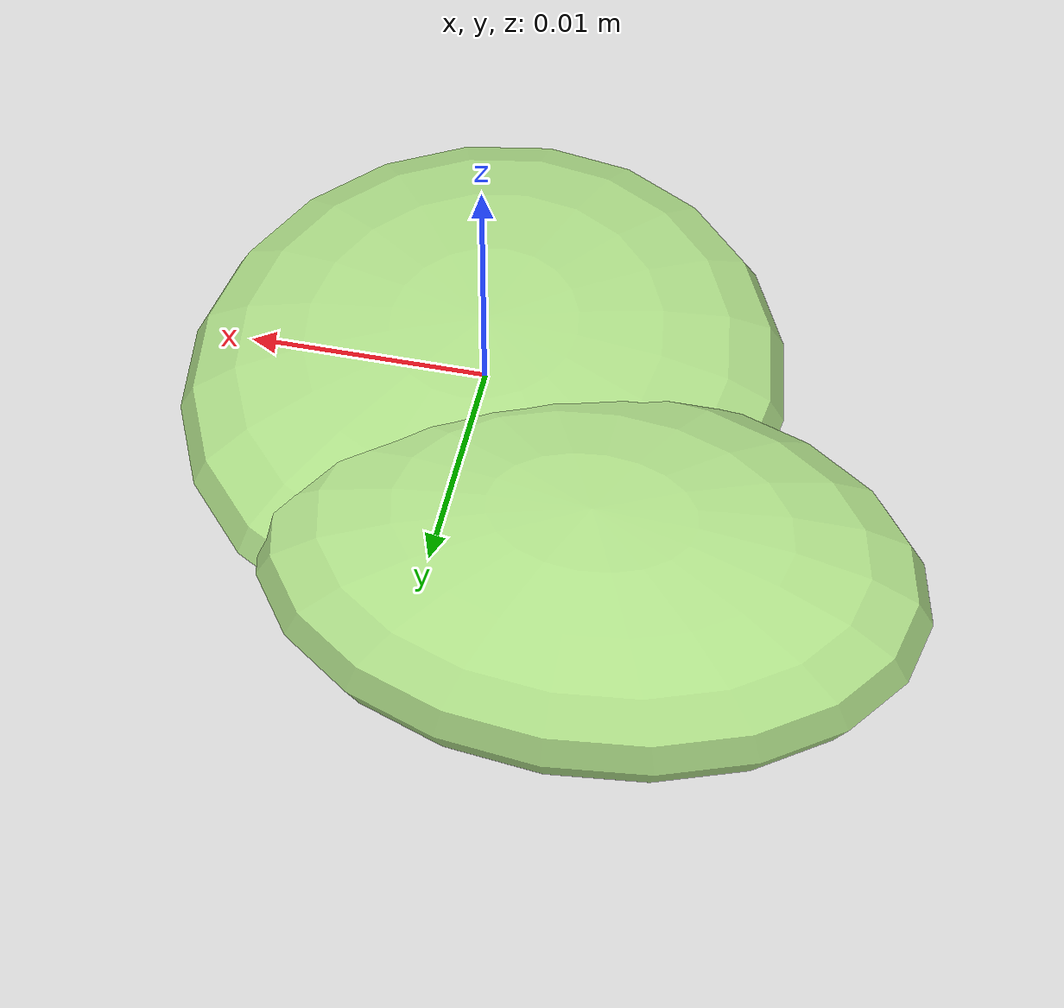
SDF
<?xml version="1.0" ?>
<!-- |    This document was autogenerated by xmacro from data/veggie_template/veggie_base.sdf.xacro  | -->
<!-- |    EDITING THIS FILE BY HAND IS NOT RECOMMENDED                                               | -->
<sdf version="1.8">
	<!-- Parameters -->
	<!-- Base -->
	<!-- Joint 0 -->
	<!-- Link 1 -->
	<!-- Joint 1 -->
	<!-- Link 2 -->
	<!-- Primitives -->
	<!-- All dimensions are half -->
	<!-- Object -->
	<model name="veggie">
		<!-- link0 -->
		<link name="link0">
			<inertial>
				<mass>0.0024019768832620044</mass>
				<inertia>
					<ixx>9.885690715508782e-08</ixx>
					<ixy>0</ixy>
					<ixz>0</ixz>
					<iyy>7.925038240262422e-08</iyy>
					<iyz>0</iyz>
					<izz>1.6757806036201788e-07</izz>
				</inertia>
			</inertial>
			<visual name="link0_visual">
				<pose>0 0 0 0 0 0</pose>
				<geometry>
					<ellipsoid>
						<radii>0.01241008291203479 0.013957917698333544 0.003310425984882182</radii>
					</ellipsoid>
				</geometry>
				<material>
					<ambient>0.659 0.839 0.514 1</ambient>
					<diffuse>0.659 0.839 0.514 1</diffuse>
					<specular>0 0 0 0</specular>
					<emissive>0 0 0 1</emissive>
				</material>
			</visual>
			<collision name="link0_collision">
				<pose>0 0 0 0 0 0 </pose>
				<geometry>
					<ellipsoid>
						<radii>0.01241008291203479 0.013957917698333544 0.003310425984882182</radii>
					</ellipsoid>
				</geometry>
			</collision>
		</link>
		<!-- link1 -->
		<joint name="joint0" type="fixed">
			<pose relative_to="link0">-0.006278739534218073 0.009539721445517789 0.00034908452438136314 0.0 0.0 0.0</pose>
			<parent>link0</parent>
			<child>link1</child>
		</joint>
		<link name="link1">
			<pose relative_to="joint0">0 0 0 0 0 0</pose>
			<inertial>
				<mass>0.001823154669387686</mass>
				<inertia>
					<ixx>3.645907480534144e-08</ixx>
					<ixy>0</ixy>
					<ixz>0</ixz>
					<iyy>6.755285691280453e-08</iyy>
					<iyz>0</iyz>
					<izz>9.486527688664282e-08</izz>
				</inertia>
			</inertial>
			<visual name="link1_visual">
				<pose>0 0 0 0 0 0</pose>
				<geometry>
					<ellipsoid>
						<radii>0.013142347643546132 0.009351290436082328 0.0035415175026356008</radii>
					</ellipsoid>
				</geometry>
				<material>
					<ambient>0.659 0.839 0.514 1</ambient>
					<diffuse>0.659 0.839 0.514 1</diffuse>
					<specular>0 0 0 0</specular>
					<emissive>0 0 0 1</emissive>
				</material>
			</visual>
			<collision name="link1_collision">
				<pose>0 0 0 0 0 0 </pose>
				<geometry>
					<ellipsoid>
						<radii>0.013142347643546132 0.009351290436082328 0.0035415175026356008</radii>
					</ellipsoid>
				</geometry>
			</collision>
		</link>
		<!-- link2 -->
	</model>
</sdf>
